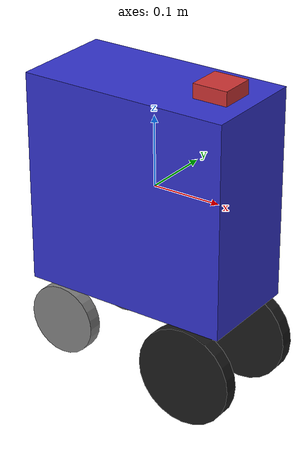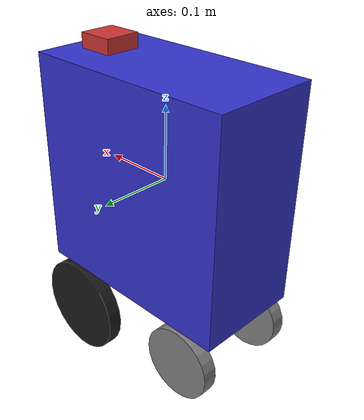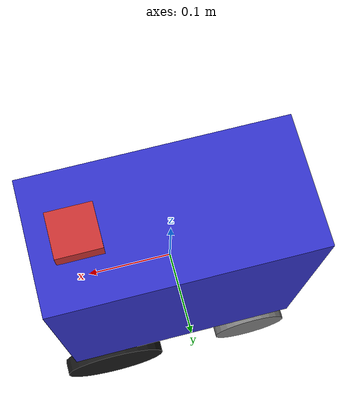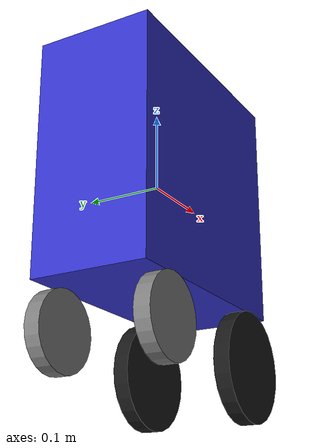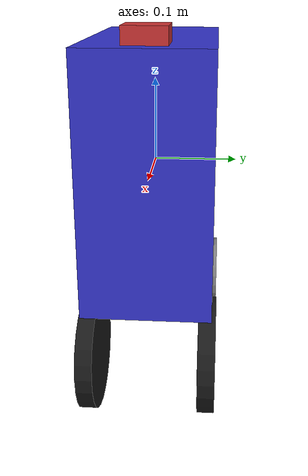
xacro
<?xml version="1.0"?>
<robot xmlns:xacro="http://www.ros.org/wiki/xacro" name="mobile_robot">

  <!-- Robot Parameters -->
  <xacro:property name="robot_length" value="0.3"/>
  <xacro:property name="robot_width" value="0.15"/>
  <xacro:property name="robot_height" value="0.3"/>
  <xacro:property name="front_wheel_radius" value="0.07"/>
  <xacro:property name="rear_wheel_radius" value="0.05"/>
  <xacro:property name="wheel_width" value="0.02"/>
  <xacro:property name="wheelbase" value="0.2"/>
  <xacro:property name="track_width" value="0.14"/>
  <xacro:property name="mass" value="3.0"/>
  <xacro:property name="wheel_mass" value="0.1"/>
  <xacro:property name="imu_mass" value="0.01"/>
  <xacro:property name="max_steer_angle" value="0.7854"/> <!-- 45 degrees -->

  <!-- Base Link -->
  <link name="base_link">
    <visual>
      <origin xyz="0 0 0" rpy="0 0 0"/>
      <geometry>
        <box size="${robot_length} ${robot_width} ${robot_height}"/>
      </geometry>
      <material name="blue">
        <color rgba="0.2 0.2 0.8 1.0"/>
      </material>
    </visual>
    <collision>
      <origin xyz="0 0 0" rpy="0 0 0"/>
      <geometry>
        <box size="${robot_length} ${robot_width} ${robot_height}"/>
      </geometry>
    </collision>
    <inertial>
      <mass value="${mass}"/>
      <inertia ixx="0.1" ixy="0.0" ixz="0.0" iyy="0.1" iyz="0.0" izz="0.1"/>
    </inertial>
  </link>

  <!-- Left Front Wheel -->
  <link name="left_front_wheel">
    <visual>
      <origin xyz="0 0 0" rpy="${pi/2} 0 0"/>
      <geometry>
        <cylinder radius="${front_wheel_radius}" length="${wheel_width}"/>
      </geometry>
      <material name="black">
        <color rgba="0.1 0.1 0.1 1.0"/>
      </material>
    </visual>
    <collision>
      <origin xyz="0 0 0" rpy="${pi/2} 0 0"/>
      <geometry>
        <cylinder radius="${front_wheel_radius}" length="${wheel_width}"/>
      </geometry>
    </collision>
    <inertial>
      <mass value="${wheel_mass}"/>
      <inertia ixx="0.001" ixy="0.0" ixz="0.0" iyy="0.001" iyz="0.0" izz="0.001"/>
    </inertial>
  </link>

  <!-- Right Front Wheel -->
  <link name="right_front_wheel">
    <visual>
      <origin xyz="0 0 0" rpy="${pi/2} 0 0"/>
      <geometry>
        <cylinder radius="${front_wheel_radius}" length="${wheel_width}"/>
      </geometry>
      <material name="black">
        <color rgba="0.1 0.1 0.1 1.0"/>
      </material>
    </visual>
    <collision>
      <origin xyz="0 0 0" rpy="${pi/2} 0 0"/>
      <geometry>
        <cylinder radius="${front_wheel_radius}" length="${wheel_width}"/>
      </geometry>
    </collision>
    <inertial>
      <mass value="${wheel_mass}"/>
      <inertia ixx="0.001" ixy="0.0" ixz="0.0" iyy="0.001" iyz="0.0" izz="0.001"/>
    </inertial>
  </link>

  <!-- Left Rear Wheel -->
  <link name="left_rear_wheel">
    <visual>
      <origin xyz="0 0 0" rpy="${pi/2} 0 0"/>
      <geometry>
        <cylinder radius="${rear_wheel_radius}" length="${wheel_width}"/>
      </geometry>
      <material name="gray">
        <color rgba="0.5 0.5 0.5 1.0"/>
      </material>
    </visual>
    <collision>
      <origin xyz="0 0 0" rpy="${pi/2} 0 0"/>
      <geometry>
        <cylinder radius="${rear_wheel_radius}" length="${wheel_width}"/>
      </geometry>
    </collision>
    <inertial>
      <mass value="${wheel_mass}"/>
      <inertia ixx="0.001" ixy="0.0" ixz="0.0" iyy="0.001" iyz="0.0" izz="0.001"/>
    </inertial>
  </link>

  <!-- Right Rear Wheel -->
  <link name="right_rear_wheel">
    <visual>
      <origin xyz="0 0 0" rpy="${pi/2} 0 0"/>
      <geometry>
        <cylinder radius="${rear_wheel_radius}" length="${wheel_width}"/>
      </geometry>
      <material name="gray">
        <color rgba="0.5 0.5 0.5 1.0"/>
      </material>
    </visual>
    <collision>
      <origin xyz="0 0 0" rpy="${pi/2} 0 0"/>
      <geometry>
        <cylinder radius="${rear_wheel_radius}" length="${wheel_width}"/>
      </geometry>
    </collision>
    <inertial>
      <mass value="${wheel_mass}"/>
      <inertia ixx="0.001" ixy="0.0" ixz="0.0" iyy="0.001" iyz="0.0" izz="0.001"/>
    </inertial>
  </link>

  <!-- IMU Link -->
  <link name="imu_link">
    <visual>
      <origin xyz="0 0 0" rpy="0 0 0"/>
      <geometry>
        <box size="0.05 0.05 0.02"/>
      </geometry>
      <material name="red">
        <color rgba="0.8 0.2 0.2 1.0"/>
      </material>
    </visual>
    <collision>
      <origin xyz="0 0 0" rpy="0 0 0"/>
      <geometry>
        <box size="0.05 0.05 0.02"/>
      </geometry>
    </collision>
    <inertial>
      <mass value="${imu_mass}"/>
      <inertia ixx="0.0001" ixy="0.0" ixz="0.0" iyy="0.0001" iyz="0.0" izz="0.0001"/>
    </inertial>
  </link>

  <!-- Joints -->
  <!-- Left Front Drive Joint -->
  <joint name="left_front_drive_joint" type="continuous">
    <parent link="base_link"/>
    <child link="left_front_wheel"/>
    <origin xyz="${wheelbase/2} ${track_width/2} -${robot_height/2 + front_wheel_radius}" rpy="0 0 0"/>
    <axis xyz="0 1 0"/>
  </joint>

  <!-- Right Front Drive Joint -->
  <joint name="right_front_drive_joint" type="continuous">
    <parent link="base_link"/>
    <child link="right_front_wheel"/>
    <origin xyz="${wheelbase/2} -${track_width/2} -${robot_height/2 + front_wheel_radius}" rpy="0 0 0"/>
    <axis xyz="0 1 0"/>
  </joint>

  <!-- Left Rear Steering Joint -->
  <joint name="left_rear_steer_joint" type="revolute">
    <parent link="base_link"/>
    <child link="left_rear_wheel"/>
    <origin xyz="-${wheelbase/2} ${track_width/2} -${robot_height/2 + rear_wheel_radius}" rpy="0 0 0"/>
    <axis xyz="0 0 1"/>
    <limit lower="-${max_steer_angle}" upper="${max_steer_angle}" effort="1000" velocity="1.0"/>
  </joint>

  <!-- Right Rear Steering Joint -->
  <joint name="right_rear_steer_joint" type="revolute">
    <parent link="base_link"/>
    <child link="right_rear_wheel"/>
    <origin xyz="-${wheelbase/2} -${track_width/2} -${robot_height/2 + rear_wheel_radius}" rpy="0 0 0"/>
    <axis xyz="0 0 1"/>
    <limit lower="-${max_steer_angle}" upper="${max_steer_angle}" effort="1000" velocity="1.0"/>
  </joint>

  <!-- IMU Joint -->
  <joint name="imu_joint" type="fixed">
    <parent link="base_link"/>
    <child link="imu_link"/>
    <origin xyz="0.1 0 ${robot_height/2 + 0.01}" rpy="0 0 0"/>
  </joint>

  <!-- Gazebo Plugins -->
  <gazebo>
    <plugin name="ackermann_drive_controller" filename="libgazebo_ros_ackermann_drive.so">
      <ros>
        <namespace>/</namespace>
      </ros>
      <update_rate>30</update_rate>
      <left_steering_joint>left_rear_steer_joint</left_steering_joint>
      <right_steering_joint>right_rear_steer_joint</right_steering_joint>
      <left_rear_joint>left_front_drive_joint</left_rear_joint>
      <right_rear_joint>right_front_drive_joint</right_rear_joint>
      <wheel_separation>${track_width}</wheel_separation>
      <wheel_diameter>${2*front_wheel_radius}</wheel_diameter>
      <max_wheel_torque>20</max_wheel_torque>
      <max_wheel_acceleration>1.0</max_wheel_acceleration>
      <max_steer_angle>${max_steer_angle}</max_steer_angle>
      <command_topic>cmd_vel</command_topic>
      <odometry_topic>odom</odometry_topic>
      <odometry_frame>odom</odometry_frame>
      <robot_base_frame>base_link</robot_base_frame>
      <publish_odom>true</publish_odom>
      <publish_odom_tf>true</publish_odom_tf>
      <publish_wheel_tf>false</publish_wheel_tf>
    </plugin>
  </gazebo>

  <gazebo>
    <plugin name="imu_plugin" filename="libgazebo_ros_imu_sensor.so">
      <ros>
        <namespace>/</namespace>
      </ros>
      <update_rate>30</update_rate>
      <always_on>true</always_on>
      <topicName>imu/data</topicName>
      <frameName>imu_link</frameName>
      <bodyName>imu_link</bodyName>
      <gaussian_noise>0.0</gaussian_noise>
      <rpy_offset>0 0 0</rpy_offset>
    </plugin>
  </gazebo>

</robot>
